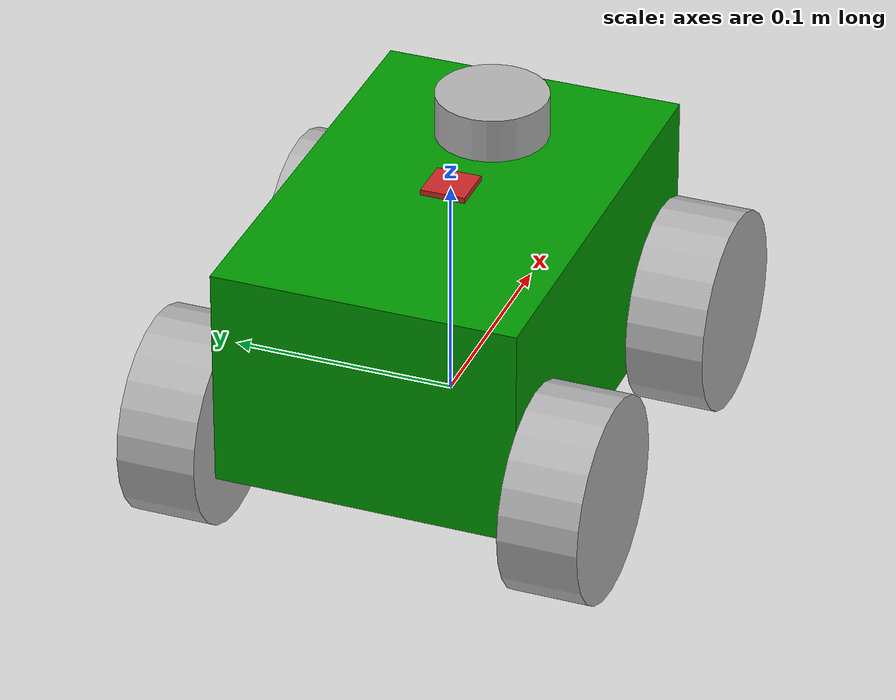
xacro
<?xml version="1.0"?>
<robot xmlns:xacro="http://www.ros.org/wiki/xacro"  name="robot">

    <xacro:arg name="use_ros2_control" default="true"/>
    <xacro:arg name="sim_mode" default="false"/>

    <xacro:include filename="guilassas.xacro" />

    <xacro:if value="$(arg use_ros2_control)">
        <xacro:include filename="ros2_control.xacro" />
    </xacro:if>
    <xacro:unless value="$(arg use_ros2_control)">
        <xacro:include filename="gazebo_control.xacro" />
    </xacro:unless>

    <xacro:include filename="lidar.xacro" />
    <xacro:include filename="camera.xacro" />
    <xacro:include filename="imu.xacro" />

</robot>

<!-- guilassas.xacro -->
<robot xmlns:xacro="http://www.ros.org/wiki/xacro" name="my_robot">
<xacro:include filename="inertial_macros.xacro" />

    <material name="green">
        <color rgba="0 0.6 0 1"/>
    </material>

    <material name="grey">
        <color rgba="0.7 0.7 0.7 1"/>
    </material>

    <link name="base_link">
        <visual>
            <geometry>
                <box size="0.205 0.135 0.1" />
            </geometry>
            <origin xyz="0 0 0.05" rpy= "0 0 0" />
            <material name="green" />
        </visual>

        <collision>
            <geometry>
                <box size="0.205 0.135 0.1" />
            </geometry>
            <origin xyz="0 0 0.05" rpy= "0 0 0" />
        </collision>
        <xacro:inertial_box mass="0.5" x="0.205" y="0.135" z="0.1">
        <origin xyz="0 0 0.05" rpy="0 0 0"/>
        </xacro:inertial_box>
    </link>

    <link name="base_footprint"/>
    <joint name="base_footprint_joint" type="fixed">
        <parent link="base_link"/>
        <child link="base_footprint" />
        <origin xyz="0 0 0" rpy= "0 0 0" />
    </joint>

    <link name="left_rear_wheel">
        <visual>
            <geometry>
                <cylinder  radius="0.045" length="0.035"/>
            </geometry>
            <origin xyz="0 0 0" rpy= "1.57 0 0" />
            <material name="grey" />
        </visual>

        <collision>
            <geometry>
                <cylinder  radius="0.045" length="0.035"/>
            </geometry>
            <origin xyz="0 0 0" rpy= "1.57 0 0" />
        </collision>
        <xacro:inertial_cylinder mass="0.1" length="0.035" radius="0.045">
        <origin xyz="0 0 0" rpy="0 0 0"/>
        </xacro:inertial_cylinder>
    </link>

    <link name="right_rear_wheel">
        <visual>
            <geometry>
                <cylinder  radius="0.045" length="0.035"/>
            </geometry>
            <origin xyz="0 0 0" rpy= "1.57 0 0" />
            <material name="grey" />
        </visual>

        <collision>
            <geometry>
                <cylinder  radius="0.045" length="0.035"/>
            </geometry>
            <origin xyz="0 0 0" rpy= "1.57 0 0" />
        </collision>
        <xacro:inertial_cylinder mass="0.1" length="0.035" radius="0.045">
        <origin xyz="0 0 0" rpy="0 0 0"/>
        </xacro:inertial_cylinder>
    </link>

    <link name="left_front_wheel">
        <visual>
            <geometry>
                <cylinder  radius="0.045" length="0.035"/>
            </geometry>
            <origin xyz="0 0 0" rpy= "1.57 0 0" />
            <material name="grey" />
        </visual>

        <collision>
            <geometry>
                <cylinder  radius="0.045" length="0.035"/>
            </geometry>
            <origin xyz="0 0 0" rpy= "1.57 0 0" />
        </collision>
        <xacro:inertial_cylinder mass="0.1" length="0.035" radius="0.045">
        <origin xyz="0 0 0" rpy="0 0 0"/>
        </xacro:inertial_cylinder>
    </link>

    <link name="right_front_wheel">
        <visual>
            <geometry>
                <cylinder  radius="0.045" length="0.035"/>
            </geometry>
            <origin xyz="0 0 0" rpy= "1.57 0 0" />
            <material name="grey" />
        </visual>

        <collision>
            <geometry>
                <cylinder  radius="0.045" length="0.035"/>
            </geometry>
            <origin xyz="0 0 0" rpy= "1.57 0 0" />
        </collision>
        <xacro:inertial_cylinder mass="0.1" length="0.035" radius="0.045">
        <origin xyz="0 0 0" rpy="0 0 0"/>
        </xacro:inertial_cylinder>

    </link>

    <joint name="base_left_rear_wheel_joint" type="continuous">
        <parent link="base_link"/>
        <child link="left_rear_wheel" />
        <origin xyz="-0.08 0.085 0.015" rpy= "0 0 0" />
        <axis xyz="0 1 0" />
    </joint>

    <joint name="base_left_front_wheel_joint" type="continuous">
        <parent link="base_link"/>
        <child link="left_front_wheel" />
        <origin xyz="0.08 0.085 0.015" rpy= "0 0 0" />
        <axis xyz="0 1 0" />
    </joint>

    <joint name="base_right_rear_wheel_joint" type="continuous">
        <parent link="base_link"/>
        <child link="right_rear_wheel" />
        <origin xyz="-0.08 -0.085 0.015" rpy= "0 0 0" />
        <axis xyz="0 1 0" />
    </joint>

    <joint name="base_right_front_wheel_joint" type="continuous">
        <parent link="base_link"/>
        <child link="right_front_wheel" />
        <origin xyz="0.08 -0.085 0.015" rpy= "0 0 0" />
        <axis xyz="0 1 0" />
    </joint>

</robot>

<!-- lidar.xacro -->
<robot xmlns:xacro="http://www.ros.org/wiki/xacro" >

    <joint name="lidar_joint" type="fixed">
        <parent link="base_link"/>
        <child link="lidar"/>
        <origin xyz="0.05 0 0.11" rpy="0 0 0"/>
    </joint>

    <link name="lidar">
        <visual>
            <geometry>
                <cylinder  radius="0.025" length="0.02"/>
            </geometry>
            <origin xyz="0 0 0" rpy= "0 0 0" />
            <material name="grey" />
        </visual>

        <collision>
            <geometry>
                <cylinder  radius="0.025" length="0.02"/>
            </geometry>
            <origin xyz="0 0 0" rpy= "0 0 0" />
        </collision>
        <xacro:inertial_cylinder mass="0.1" length="0.04" radius="0.05">
            <origin xyz="0 0 0" rpy="0 0 0"/>
        </xacro:inertial_cylinder>
    </link>

    <gazebo reference="lidar">
        <material>Gazebo/Black</material>

        <sensor name="laser" type="gpu_lidar">
            <pose>0 0 0.06 0 0 0</pose>
            <visualize>true</visualize>
            <update_rate>30</update_rate>
            <lidar>
                <scan>
                    <horizontal>
                        <samples>360</samples>
                        <min_angle>-3.14</min_angle>
                        <max_angle>3.14</max_angle>
                    </horizontal>
                </scan>
                <range>
                    <min>0.3</min>
                    <max>12</max>
                </range>
            </lidar>

            <topic>scan</topic>

            <gz_frame_id>lidar</gz_frame_id>
        </sensor>
    </gazebo>

</robot>

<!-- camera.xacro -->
<robot xmlns:xacro="http://www.ros.org/wiki/xacro">

  <xacro:property name="M_PI" value="3.1415926535897931"/>

  <joint name="camera_joint" type="fixed">
    <parent link="base_link"/>
    <child link="camera_link"/>
    <origin xyz="0.1025 0 0.08" rpy="0 0 0"/>
  </joint>

  <link name="camera_link">
    <visual>
      <geometry>
        <box size="0.01 0.03 0.03"/>
      </geometry>
      <origin xyz="0 0 0" rpy="0 0 0"/>
      <material name="red"/>
    </visual>
    <inertial>
      <mass value="0.1"/>
      <origin xyz="0 0 0" rpy="0 0 0"/>
      <inertia ixx="0.001" ixy="0" ixz="0" iyy="0.001" iyz="0" izz="0.001"/>
    </inertial>
  </link>

  <joint name="camera_optical_joint" type="fixed">
    <parent link="camera_link"/>
    <child link="camera_link_optical"/>
    <origin xyz="0 0 0" rpy="${-M_PI/2} 0 ${-M_PI/2}"/>
  </joint>

  <link name="camera_link_optical"/>

  <!-- Sensor para ROS 2 + Gazebo -->
  <gazebo reference="camera_link">
    <material>Gazebo/Red</material>

    <sensor name="camera" type="camera">
      <pose>0 0 0 0 0 0</pose>
      <visualize>true</visualize>
      <update_rate>10</update_rate>
      <camera>
        <horizontal_fov>1.089</horizontal_fov>
        <image>
          <width>640</width>
          <height>480</height>
          <format>R8G8B8</format>
        </image>
        <clip>
          <near>0.05</near>
          <far>8.0</far>
        </clip>
      </camera>
      <topic>camera/image_raw</topic>
      <gz_frame_id>camera_link_optical</gz_frame_id>
    </sensor>

  </gazebo>

</robot>

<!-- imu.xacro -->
<robot xmlns:xacro="http://www.ros.org/wiki/xacro" >

    <joint name="imu_joint" type="fixed">
        <parent link="base_link"/>
        <child link="imu"/>
        <origin xyz="0 0 0.10" rpy="0 0 0"/>
    </joint>

    <link name="imu">
        <visual>
            <geometry>
                <box size="0.02 0.02 0.005"/>
            </geometry>
            <origin xyz="0 0 0" rpy= "0 0 0" />
            <material name="red" />
        </visual>

        <inertial>
            <mass value="0.1"/>
            <origin xyz="0 0 0" rpy="0 0 0"/>
            <inertia ixx="0.001" ixy="0" ixz="0" iyy="0.001" iyz="0" izz="0.001"/>
        </inertial>
    </link>

    <gazebo reference="imu">
        <material>Gazebo/Black</material>
        <sensor name="imu_sensor" type="imu">
            <always_on>1</always_on>
            <update_rate>50</update_rate>
            <visualize>true</visualize>
            <plugin filename="gz-sim-imu-system"
                name="gz::sim::systems::Imu">
            </plugin>
        </sensor>
    </gazebo>

</robot>
